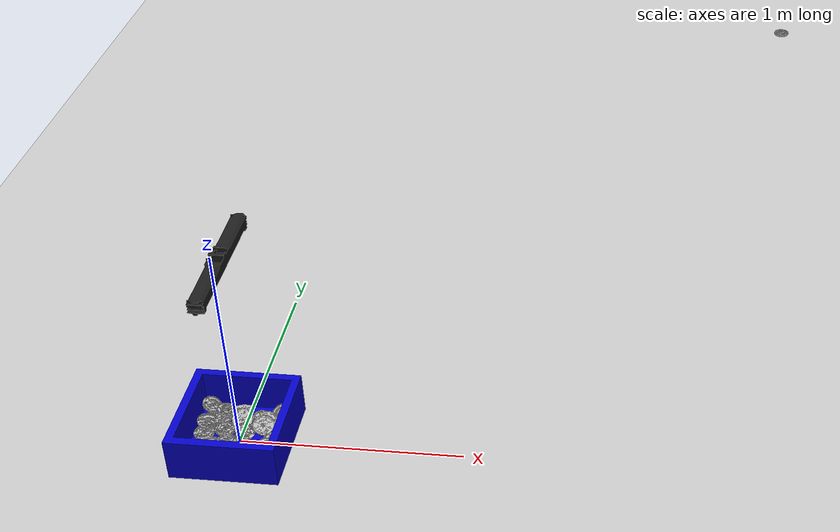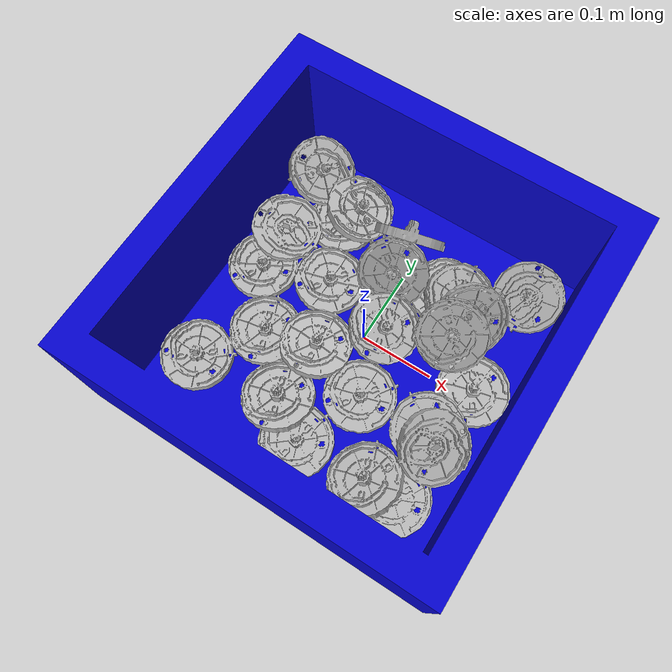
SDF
<sdf version="1.7">
 <world name="default">
  <light name="sun" type="directional">
   <pose>0 0 10 0 -0 0</pose>
   <diffuse>0.8 0.8 0.8 1</diffuse>
   <specular>0.2 0.2 0.2 1</specular>
   <attenuation>
    <range>1000</range>
    <constant>0.9</constant>
    <linear>0.01</linear>
    <quadratic>0.001</quadratic>
   </attenuation>
   <direction>-0.5 0.1 -0.9</direction>
   <spot><inner_angle>0</inner_angle><outer_angle>0</outer_angle><falloff>0</falloff></spot>
  </light>
  <model name="ground_plane">
   <static>1</static>
   <link name="link">
    <collision name="collision">
     <geometry><plane><normal>0 0 1</normal><size>100 100</size></plane></geometry>
     <surface>
      <contact><collide_bitmask>65535</collide_bitmask></contact>
      <friction><ode><mu>100</mu><mu2>50</mu2></ode></friction>
     </surface>
    </collision>
    <visual name="visual">
     <cast_shadows>0</cast_shadows>
     <geometry><plane><normal>0 0 1</normal><size>100 100</size></plane></geometry>
     <material>
      <script><uri>file://media/materials/scripts/gazebo.material</uri><name>Gazebo/Grey</name></script>
     </material>
    </visual>
   </link>
  </model>
  <gravity>0 0 -9.8</gravity>
  <magnetic_field>6e-06 2.3e-05 -4.2e-05</magnetic_field>
  <atmosphere type="adiabatic"/>
  <physics type="ode">
   <max_step_size>0.001</max_step_size>
   <real_time_factor>1</real_time_factor>
   <real_time_update_rate>1000</real_time_update_rate>
  </physics>
  <scene><ambient>0.4 0.4 0.4 1</ambient><background>0.7 0.7 0.7 1</background><shadows>1</shadows></scene>
  <spherical_coordinates>
   <surface_model>EARTH_WGS84</surface_model>
   <latitude_deg>0</latitude_deg>
   <longitude_deg>0</longitude_deg>
   <elevation>0</elevation>
   <heading_deg>0</heading_deg>
  </spherical_coordinates>
  <model name="HV8">
   <pose>2.54539 4.22937 -1e-06 -2.4e-05 1.8e-05 0.000233</pose>
   <static>0</static>
   <link name="HV8">
    <inertial>
     <mass>0.2</mass>
     <inertia><ixx>0.0005</ixx><ixy>0</ixy><ixz>0</ixz><iyy>0.0005</iyy><iyz>0</iyz><izz>0.0005</izz></inertia>
    </inertial>
    <collision name="collishin">
     <geometry><mesh><uri>model://HV8/meshes/HV8_1.stl</uri></mesh></geometry>
    </collision>
    <visual name="visual"><geometry><mesh><uri>model://HV8/meshes/HV8_1.stl</uri></mesh></geometry></visual>
   </link>
  </model>
  <model name="HV8_0">
   <pose>0.155648 0.142546 0.051792 -2.79768 -0.145122 -0.120663</pose>
   <static>0</static>
   <link name="HV8">
    <inertial>
     <mass>0.2</mass>
     <inertia><ixx>0.0005</ixx><ixy>0</ixy><ixz>0</ixz><iyy>0.0005</iyy><iyz>0</iyz><izz>0.0005</izz></inertia>
    </inertial>
    <collision name="collishin">
     <geometry><mesh><uri>model://HV8/meshes/HV8_1.stl</uri></mesh></geometry>
    </collision>
    <visual name="visual"><geometry><mesh><uri>model://HV8/meshes/HV8_1.stl</uri></mesh></geometry></visual>
   </link>
  </model>
  <model name="HV8_1">
   <pose>0.10861 0.077688 0.053516 0.462029 0.51549 -0.010242</pose>
   <static>0</static>
   <link name="HV8">
    <inertial>
     <mass>0.2</mass>
     <inertia><ixx>0.0005</ixx><ixy>0</ixy><ixz>0</ixz><iyy>0.0005</iyy><iyz>0</iyz><izz>0.0005</izz></inertia>
    </inertial>
    <collision name="collishin">
     <geometry><mesh><uri>model://HV8/meshes/HV8_1.stl</uri></mesh></geometry>
    </collision>
    <visual name="visual"><geometry><mesh><uri>model://HV8/meshes/HV8_1.stl</uri></mesh></geometry></visual>
   </link>
  </model>
  <model name="HV8_2">
   <pose>0.100745 0.043262 0.060703 0.530751 -0.233834 0.755989</pose>
   <static>0</static>
   <link name="HV8">
    <inertial>
     <mass>0.2</mass>
     <inertia><ixx>0.0005</ixx><ixy>0</ixy><ixz>0</ixz><iyy>0.0005</iyy><iyz>0</iyz><izz>0.0005</izz></inertia>
    </inertial>
    <collision name="collishin">
     <geometry><mesh><uri>model://HV8/meshes/HV8_1.stl</uri></mesh></geometry>
    </collision>
    <visual name="visual"><geometry><mesh><uri>model://HV8/meshes/HV8_1.stl</uri></mesh></geometry></visual>
   </link>
  </model>
  <model name="HV8_3">
   <pose>0.156946 0.0034 0.025004 0.000311 -0.000449 0.518994</pose>
   <static>0</static>
   <link name="HV8">
    <inertial>
     <mass>0.2</mass>
     <inertia><ixx>0.0005</ixx><ixy>0</ixy><ixz>0</ixz><iyy>0.0005</iyy><iyz>0</iyz><izz>0.0005</izz></inertia>
    </inertial>
    <collision name="collishin">
     <geometry><mesh><uri>model://HV8/meshes/HV8_1.stl</uri></mesh></geometry>
    </collision>
    <visual name="visual"><geometry><mesh><uri>model://HV8/meshes/HV8_1.stl</uri></mesh></geometry></visual>
   </link>
  </model>
  <model name="HV8_4">
   <pose>0.141991 -0.160809 0.024995 0.000186 -1.1e-05 -0.477889</pose>
   <static>0</static>
   <link name="HV8">
    <inertial>
     <mass>0.2</mass>
     <inertia><ixx>0.0005</ixx><ixy>0</ixy><ixz>0</ixz><iyy>0.0005</iyy><iyz>0</iyz><izz>0.0005</izz></inertia>
    </inertial>
    <collision name="collishin">
     <geometry><mesh><uri>model://HV8/meshes/HV8_1.stl</uri></mesh></geometry>
    </collision>
    <visual name="visual"><geometry><mesh><uri>model://HV8/meshes/HV8_1.stl</uri></mesh></geometry></visual>
   </link>
  </model>
  <model name="HV8_5">
   <pose>0.060232 0.100847 0.025001 0.0005 2e-06 -0.906933</pose>
   <static>0</static>
   <link name="HV8">
    <inertial>
     <mass>0.2</mass>
     <inertia><ixx>0.0005</ixx><ixy>0</ixy><ixz>0</ixz><iyy>0.0005</iyy><iyz>0</iyz><izz>0.0005</izz></inertia>
    </inertial>
    <collision name="collishin">
     <geometry><mesh><uri>model://HV8/meshes/HV8_1.stl</uri></mesh></geometry>
    </collision>
    <visual name="visual"><geometry><mesh><uri>model://HV8/meshes/HV8_1.stl</uri></mesh></geometry></visual>
   </link>
  </model>
  <model name="HV8_6">
   <pose>0.081732 0.094601 0.044366 0.217163 0.338688 0.270084</pose>
   <static>0</static>
   <link name="HV8">
    <inertial>
     <mass>0.2</mass>
     <inertia><ixx>0.0005</ixx><ixy>0</ixy><ixz>0</ixz><iyy>0.0005</iyy><iyz>0</iyz><izz>0.0005</izz></inertia>
    </inertial>
    <collision name="collishin">
     <geometry><mesh><uri>model://HV8/meshes/HV8_1.stl</uri></mesh></geometry>
    </collision>
    <visual name="visual"><geometry><mesh><uri>model://HV8/meshes/HV8_1.stl</uri></mesh></geometry></visual>
   </link>
  </model>
  <model name="HV8_7">
   <pose>0.155992 -0.089334 0.063927 2.86463 0.417336 -0.849256</pose>
   <static>0</static>
   <link name="HV8">
    <inertial>
     <mass>0.2</mass>
     <inertia><ixx>0.0005</ixx><ixy>0</ixy><ixz>0</ixz><iyy>0.0005</iyy><iyz>0</iyz><izz>0.0005</izz></inertia>
    </inertial>
    <collision name="collishin">
     <geometry><mesh><uri>model://HV8/meshes/HV8_1.stl</uri></mesh></geometry>
    </collision>
    <visual name="visual"><geometry><mesh><uri>model://HV8/meshes/HV8_1.stl</uri></mesh></geometry></visual>
   </link>
  </model>
  <model name="HV8_8">
   <pose>0.134312 -0.06909 0.031887 0.069204 -0.135655 1.11354</pose>
   <static>0</static>
   <link name="HV8">
    <inertial>
     <mass>0.2</mass>
     <inertia><ixx>0.0005</ixx><ixy>0</ixy><ixz>0</ixz><iyy>0.0005</iyy><iyz>0</iyz><izz>0.0005</izz></inertia>
    </inertial>
    <collision name="collishin">
     <geometry><mesh><uri>model://HV8/meshes/HV8_1.stl</uri></mesh></geometry>
    </collision>
    <visual name="visual"><geometry><mesh><uri>model://HV8/meshes/HV8_1.stl</uri></mesh></geometry></visual>
   </link>
  </model>
  <model name="HV8_9">
   <pose>0.104987 -0.162376 0.040108 -0.177507 -0.289828 0.420089</pose>
   <static>0</static>
   <link name="HV8">
    <inertial>
     <mass>0.2</mass>
     <inertia><ixx>0.0005</ixx><ixy>0</ixy><ixz>0</ixz><iyy>0.0005</iyy><iyz>0</iyz><izz>0.0005</izz></inertia>
    </inertial>
    <collision name="collishin">
     <geometry><mesh><uri>model://HV8/meshes/HV8_1.stl</uri></mesh></geometry>
    </collision>
    <visual name="visual"><geometry><mesh><uri>model://HV8/meshes/HV8_1.stl</uri></mesh></geometry></visual>
   </link>
  </model>
  <model name="HV8_10">
   <pose>-0.009498 0.121636 0.065753 -0.779284 -0.897728 -0.430491</pose>
   <static>0</static>
   <link name="HV8">
    <inertial>
     <mass>0.2</mass>
     <inertia><ixx>0.0005</ixx><ixy>0</ixy><ixz>0</ixz><iyy>0.0005</iyy><iyz>0</iyz><izz>0.0005</izz></inertia>
    </inertial>
    <collision name="collishin">
     <geometry><mesh><uri>model://HV8/meshes/HV8_1.stl</uri></mesh></geometry>
    </collision>
    <visual name="visual"><geometry><mesh><uri>model://HV8/meshes/HV8_1.stl</uri></mesh></geometry></visual>
   </link>
  </model>
  <model name="HV8_11">
   <pose>-0.005666 0.079281 0.055698 0.574762 -0.358883 0.792504</pose>
   <static>0</static>
   <link name="HV8">
    <inertial>
     <mass>0.2</mass>
     <inertia><ixx>0.0005</ixx><ixy>0</ixy><ixz>0</ixz><iyy>0.0005</iyy><iyz>0</iyz><izz>0.0005</izz></inertia>
    </inertial>
    <collision name="collishin">
     <geometry><mesh><uri>model://HV8/meshes/HV8_1.stl</uri></mesh></geometry>
    </collision>
    <visual name="visual"><geometry><mesh><uri>model://HV8/meshes/HV8_1.stl</uri></mesh></geometry></visual>
   </link>
  </model>
  <model name="HV8_12">
   <pose>0.021871 0.009801 0.043802 0.131472 0.321265 0.269318</pose>
   <static>0</static>
   <link name="HV8">
    <inertial>
     <mass>0.2</mass>
     <inertia><ixx>0.0005</ixx><ixy>0</ixy><ixz>0</ixz><iyy>0.0005</iyy><iyz>0</iyz><izz>0.0005</izz></inertia>
    </inertial>
    <collision name="collishin">
     <geometry><mesh><uri>model://HV8/meshes/HV8_1.stl</uri></mesh></geometry>
    </collision>
    <visual name="visual"><geometry><mesh><uri>model://HV8/meshes/HV8_1.stl</uri></mesh></geometry></visual>
   </link>
  </model>
  <model name="HV8_13">
   <pose>0.042896 -0.077135 0.02503 0.000609 -7.3e-05 -0.584527</pose>
   <static>0</static>
   <link name="HV8">
    <inertial>
     <mass>0.2</mass>
     <inertia><ixx>0.0005</ixx><ixy>0</ixy><ixz>0</ixz><iyy>0.0005</iyy><iyz>0</iyz><izz>0.0005</izz></inertia>
    </inertial>
    <collision name="collishin">
     <geometry><mesh><uri>model://HV8/meshes/HV8_1.stl</uri></mesh></geometry>
    </collision>
    <visual name="visual"><geometry><mesh><uri>model://HV8/meshes/HV8_1.stl</uri></mesh></geometry></visual>
   </link>
  </model>
  <model name="HV8_14">
   <pose>0.007611 -0.16504 0.024996 0.00044 -0.000416 -0.168052</pose>
   <static>0</static>
   <link name="HV8">
    <inertial>
     <mass>0.2</mass>
     <inertia><ixx>0.0005</ixx><ixy>0</ixy><ixz>0</ixz><iyy>0.0005</iyy><iyz>0</iyz><izz>0.0005</izz></inertia>
    </inertial>
    <collision name="collishin">
     <geometry><mesh><uri>model://HV8/meshes/HV8_1.stl</uri></mesh></geometry>
    </collision>
    <visual name="visual"><geometry><mesh><uri>model://HV8/meshes/HV8_1.stl</uri></mesh></geometry></visual>
   </link>
  </model>
  <model name="HV8_15">
   <pose>-0.093988 0.13521 0.04463 -0.22322 -0.27991 -2.04149</pose>
   <static>0</static>
   <link name="HV8">
    <inertial>
     <mass>0.2</mass>
     <inertia><ixx>0.0005</ixx><ixy>0</ixy><ixz>0</ixz><iyy>0.0005</iyy><iyz>0</iyz><izz>0.0005</izz></inertia>
    </inertial>
    <collision name="collishin">
     <geometry><mesh><uri>model://HV8/meshes/HV8_1.stl</uri></mesh></geometry>
    </collision>
    <visual name="visual"><geometry><mesh><uri>model://HV8/meshes/HV8_1.stl</uri></mesh></geometry></visual>
   </link>
  </model>
  <model name="HV8_16">
   <pose>-0.165468 0.151978 0.057392 0.237482 -0.432877 2.61705</pose>
   <static>0</static>
   <link name="HV8">
    <inertial>
     <mass>0.2</mass>
     <inertia><ixx>0.0005</ixx><ixy>0</ixy><ixz>0</ixz><iyy>0.0005</iyy><iyz>0</iyz><izz>0.0005</izz></inertia>
    </inertial>
    <collision name="collishin">
     <geometry><mesh><uri>model://HV8/meshes/HV8_1.stl</uri></mesh></geometry>
    </collision>
    <visual name="visual"><geometry><mesh><uri>model://HV8/meshes/HV8_1.stl</uri></mesh></geometry></visual>
   </link>
  </model>
  <model name="HV8_17">
   <pose>-0.07351 0.031796 0.029805 -0.085245 0.062792 -0.544474</pose>
   <static>0</static>
   <link name="HV8">
    <inertial>
     <mass>0.2</mass>
     <inertia><ixx>0.0005</ixx><ixy>0</ixy><ixz>0</ixz><iyy>0.0005</iyy><iyz>0</iyz><izz>0.0005</izz></inertia>
    </inertial>
    <collision name="collishin">
     <geometry><mesh><uri>model://HV8/meshes/HV8_1.stl</uri></mesh></geometry>
    </collision>
    <visual name="visual"><geometry><mesh><uri>model://HV8/meshes/HV8_1.stl</uri></mesh></geometry></visual>
   </link>
  </model>
  <model name="HV8_18">
   <pose>-0.038188 -0.052771 0.037918 -0.139895 0.058466 0.193593</pose>
   <static>0</static>
   <link name="HV8">
    <inertial>
     <mass>0.2</mass>
     <inertia><ixx>0.0005</ixx><ixy>0</ixy><ixz>0</ixz><iyy>0.0005</iyy><iyz>0</iyz><izz>0.0005</izz></inertia>
    </inertial>
    <collision name="collishin">
     <geometry><mesh><uri>model://HV8/meshes/HV8_1.stl</uri></mesh></geometry>
    </collision>
    <visual name="visual"><geometry><mesh><uri>model://HV8/meshes/HV8_1.stl</uri></mesh></geometry></visual>
   </link>
  </model>
  <model name="HV8_19">
   <pose>-0.039911 -0.133043 0.033698 -0.169304 -0.089383 0.404189</pose>
   <static>0</static>
   <link name="HV8">
    <inertial>
     <mass>0.2</mass>
     <inertia><ixx>0.0005</ixx><ixy>0</ixy><ixz>0</ixz><iyy>0.0005</iyy><iyz>0</iyz><izz>0.0005</izz></inertia>
    </inertial>
    <collision name="collishin">
     <geometry><mesh><uri>model://HV8/meshes/HV8_1.stl</uri></mesh></geometry>
    </collision>
    <visual name="visual"><geometry><mesh><uri>model://HV8/meshes/HV8_1.stl</uri></mesh></geometry></visual>
   </link>
  </model>
  <model name="object_box">
   <pose>-0.002278 -0.008248 0 0 -0 0</pose>
   <static>1</static>
   <link name="object_box">
    <inertial>
     <mass>0.2</mass>
     <inertia><ixx>0.0005</ixx><ixy>0</ixy><ixz>0</ixz><iyy>0.0005</iyy><iyz>0</iyz><izz>0.0005</izz></inertia>
    </inertial>
    <collision name="collision">
     <geometry><mesh><uri>model://object_box/meshed/object_box_kai.dae</uri></mesh></geometry>
    </collision>
    <visual name="visual">
     <geometry><mesh><uri>model://object_box/meshed/object_box_kai.dae</uri></mesh></geometry>
    </visual>
   </link>
  </model>
  <model name="phoxi_camera">
   <joint name="photoneo_center_joint" type="fixed">
    <pose relative_to="__model__">0 0 1 3.14159 1.57079 3.14159</pose>
    <parent>world</parent>
    <child>photoneo_center</child>
   </joint>
   <link name="photoneo_center">
    <pose relative_to="photoneo_center_joint">0 0 0 0 -0 0</pose>
    <inertial>
     <mass>1.1</mass>
     <inertia><ixx>1</ixx><ixy>0</ixy><ixz>0</ixz><iyy>1</iyy><iyz>0</iyz><izz>1</izz></inertia>
    </inertial>
    <collision name="photoneo_center_collision">
     <pose>0 0 0 1.5708 -0 -3.14159</pose>
     <geometry>
      <mesh>
       <scale>0.001 0.001 0.001</scale>
       <uri>/home/ericlab/ros_package/denso_ws/src/denso_run/denso_pkgs/denso_common/denso_descriptions/phoxi_camera_description/meshes/collision/PhoXi_L.c.STL</uri>
      </mesh>
     </geometry>
     <surface><friction><ode><mu>0.2</mu><mu2>0.2</mu2></ode></friction></surface>
    </collision>
    <visual name="photoneo_center_visual">
     <pose>0 0 0 1.5708 -0 -3.14159</pose>
     <geometry>
      <mesh>
       <scale>0.001 0.001 0.001</scale>
       <uri>/home/ericlab/ros_package/denso_ws/src/denso_run/denso_pkgs/denso_common/denso_descriptions/phoxi_camera_description/meshes/visual/PhoXi_L.f.STL</uri>
      </mesh>
     </geometry>
     <material>
      <script><name>Gazebo/Black</name><uri>file://media/materials/scripts/gazebo.material</uri></script>
     </material>
    </visual>
    <sensor name="photoneo_center_sensor" type="depth">
     <always_on>1</always_on>
     <update_rate>30</update_rate>
     <camera>
      <horizontal_fov>1.46782</horizontal_fov>
      <image><format>L8</format><width>2064</width><height>1544</height></image>
      <clip><near>0.05</near><far>4.5</far></clip>
      <noise><type>gaussian</type><mean>0</mean><stddev>0.005</stddev></noise>
     </camera>
     <plugin name="photoneo_center_sensor_controller" filename="libgazebo_ros_openni_kinect.so">
      <cameraName>photoneo_center/sensor</cameraName>
      <alwaysOn>1</alwaysOn>
      <updateRate>30</updateRate>
      <imageTopicName>image_color</imageTopicName>
      <depthImageTopicName>image_depth</depthImageTopicName>
      <pointCloudTopicName>points</pointCloudTopicName>
      <cameraInfoTopicName>camera_info</cameraInfoTopicName>
      <depthImageCameraInfoTopicName>camera_info</depthImageCameraInfoTopicName>
      <frameName>photoneo_center_optical_frame</frameName>
      <baseline>0.1</baseline>
      <distortion_k1>-0.11862627596824302</distortion_k1>
      <distortion_k2>0.1330449495758574</distortion_k2>
      <distortion_k3>0.0</distortion_k3>
      <distortion_t1>0.0012978747886444077</distortion_t1>
      <distortion_t2>-0.002273816413316873</distortion_t2>
      <focalLength>2293.3324879074394</focalLength>
      <hackBaseline>0.0</hackBaseline>
      <Cx>1041.4935095434566</Cx>
      <Cy>857.6330096952366</Cy>
      <pointCloudCutoff>0.05</pointCloudCutoff>
      <pointCloudCutoffMax>4.5</pointCloudCutoffMax>
      <robotNamespace>/</robotNamespace>
     </plugin>
    </sensor>
    <sensor name="photoneo_center_camera" type="camera">
     <always_on>1</always_on>
     <update_rate>30</update_rate>
     <camera>
      <pose>0.035 -0.275 0.0168 0 -0 0.164934</pose>
      <horizontal_fov>1.46782</horizontal_fov>
      <image><format>L8</format><width>752</width><height>480</height></image>
      <clip><near>0.05</near><far>4.5</far></clip>
      <noise><type>gaussian</type><mean>0</mean><stddev>0.005</stddev></noise>
     </camera>
     <plugin name="photoneo_center_camera_controller" filename="libgazebo_ros_camera.so">
      <cameraName>photoneo_center/camera</cameraName>
      <alwaysOn>1</alwaysOn>
      <updateRate>30</updateRate>
      <imageTopicName>image_color</imageTopicName>
      <frameName>photoneo_center_camera_frame</frameName>
      <baseline>0.1</baseline>
      <distortion_k1>-0.11862627596824302</distortion_k1>
      <distortion_k2>0.1330449495758574</distortion_k2>
      <distortion_k3>0.0</distortion_k3>
      <distortion_t1>0.0012978747886444077</distortion_t1>
      <distortion_t2>-0.002273816413316873</distortion_t2>
      <focalLength>2293.3324879074394</focalLength>
      <hackBaseline>0.0</hackBaseline>
      <Cx>1041.4935095434566</Cx>
      <Cy>857.6330096952366</Cy>
      <pointCloudCutoff>0.05</pointCloudCutoff>
      <pointCloudCutoffMax>4.5</pointCloudCutoffMax>
      <robotNamespace>/</robotNamespace>
     </plugin>
    </sensor>
   </link>
  </model>
  <model name="HV8_20">
   <pose>-0.107191 0.116294 0.025007 0.002331 -0.000423 -0.141751</pose>
   <static>0</static>
   <link name="HV8">
    <inertial>
     <mass>0.2</mass>
     <inertia><ixx>0.0005</ixx><ixy>0</ixy><ixz>0</ixz><iyy>0.0005</iyy><iyz>0</iyz><izz>0.0005</izz></inertia>
    </inertial>
    <collision name="collishin">
     <geometry><mesh><uri>model://HV8/meshes/HV8_1.stl</uri></mesh></geometry>
    </collision>
    <visual name="visual"><geometry><mesh><uri>model://HV8/meshes/HV8_1.stl</uri></mesh></geometry></visual>
   </link>
  </model>
  <model name="HV8_21">
   <pose>-0.158942 0.061479 0.053034 -2.99089 -0.00396 1.38834</pose>
   <static>0</static>
   <link name="HV8">
    <inertial>
     <mass>0.2</mass>
     <inertia><ixx>0.0005</ixx><ixy>0</ixy><ixz>0</ixz><iyy>0.0005</iyy><iyz>0</iyz><izz>0.0005</izz></inertia>
    </inertial>
    <collision name="collishin">
     <geometry><mesh><uri>model://HV8/meshes/HV8_1.stl</uri></mesh></geometry>
    </collision>
    <visual name="visual"><geometry><mesh><uri>model://HV8/meshes/HV8_1.stl</uri></mesh></geometry></visual>
   </link>
  </model>
  <model name="HV8_22">
   <pose>-0.16007 0.004824 0.025005 0.000533 8.9e-05 -0.353314</pose>
   <static>0</static>
   <link name="HV8">
    <inertial>
     <mass>0.2</mass>
     <inertia><ixx>0.0005</ixx><ixy>0</ixy><ixz>0</ixz><iyy>0.0005</iyy><iyz>0</iyz><izz>0.0005</izz></inertia>
    </inertial>
    <collision name="collishin">
     <geometry><mesh><uri>model://HV8/meshes/HV8_1.stl</uri></mesh></geometry>
    </collision>
    <visual name="visual"><geometry><mesh><uri>model://HV8/meshes/HV8_1.stl</uri></mesh></geometry></visual>
   </link>
  </model>
  <model name="HV8_23">
   <pose>-0.105709 -0.068211 0.02502 0.000152 0.000339 0.399194</pose>
   <static>0</static>
   <link name="HV8">
    <inertial>
     <mass>0.2</mass>
     <inertia><ixx>0.0005</ixx><ixy>0</ixy><ixz>0</ixz><iyy>0.0005</iyy><iyz>0</iyz><izz>0.0005</izz></inertia>
    </inertial>
    <collision name="collishin">
     <geometry><mesh><uri>model://HV8/meshes/HV8_1.stl</uri></mesh></geometry>
    </collision>
    <visual name="visual"><geometry><mesh><uri>model://HV8/meshes/HV8_1.stl</uri></mesh></geometry></visual>
   </link>
  </model>
  <model name="HV8_24">
   <pose>-0.159595 -0.141445 0.025012 8.1e-05 -0.000176 -0.856949</pose>
   <static>0</static>
   <link name="HV8">
    <inertial>
     <mass>0.2</mass>
     <inertia><ixx>0.0005</ixx><ixy>0</ixy><ixz>0</ixz><iyy>0.0005</iyy><iyz>0</iyz><izz>0.0005</izz></inertia>
    </inertial>
    <collision name="collishin">
     <geometry><mesh><uri>model://HV8/meshes/HV8_1.stl</uri></mesh></geometry>
    </collision>
    <visual name="visual"><geometry><mesh><uri>model://HV8/meshes/HV8_1.stl</uri></mesh></geometry></visual>
   </link>
  </model>
 </world>
</sdf>
